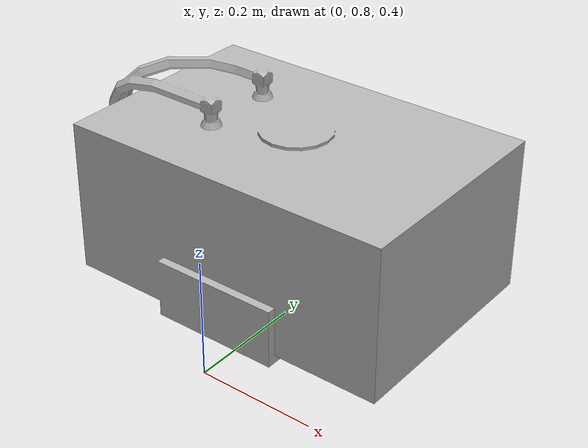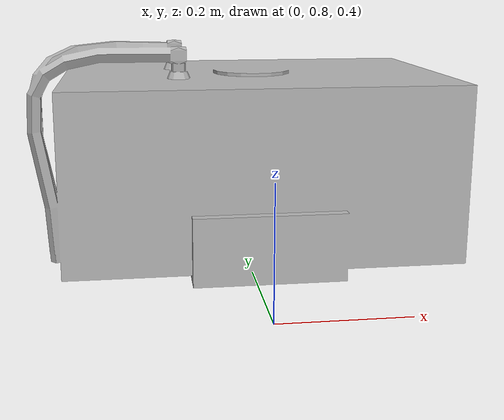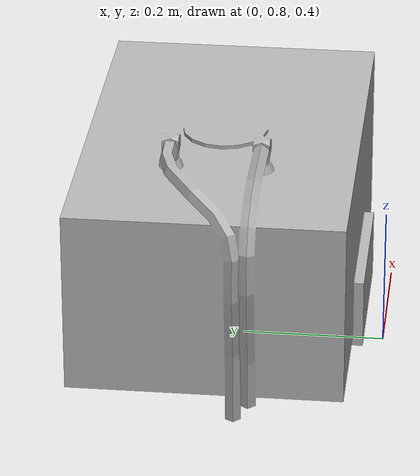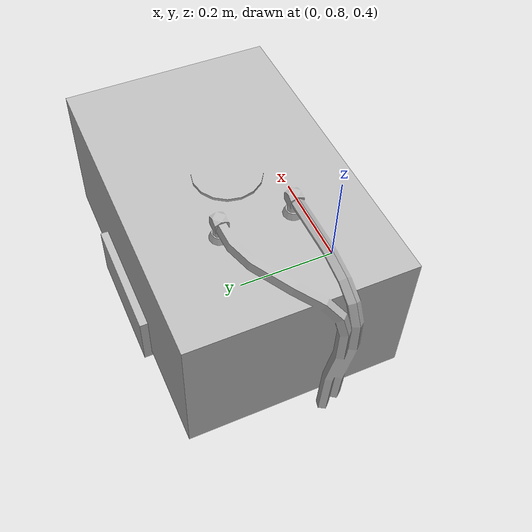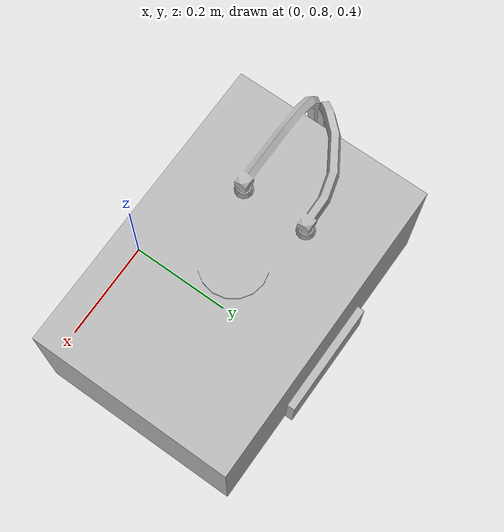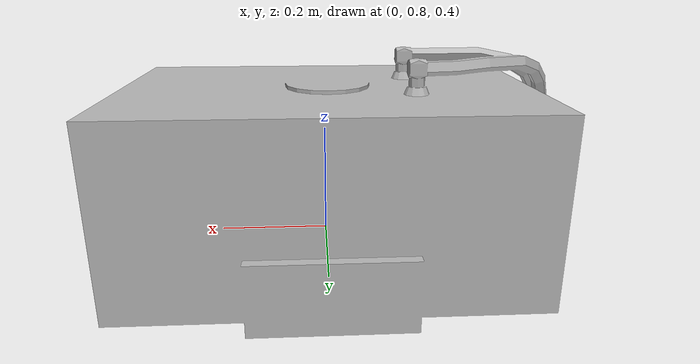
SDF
<?xml version="1.0"?>
<sdf version="1.6">
  <model name="battery">
    <link name="battery_link">

      <visual name="battery_visual">
        <geometry>
          <mesh>
            <uri>meshes/battery.dae</uri>
          </mesh>
        </geometry>
      </visual>
      <collision name="battery_collision">
        <pose>0 0 .15 0 0 0</pose>
        <geometry>
          <box><size>.6 .4 .31</size></box>
        </geometry>
      </collision>
      <inertial>
        <pose>0 0 .15 0 0 0</pose>
        <mass>23.5</mass>
        <inertia>
          <ixx>0.5015291666666667</ixx>
          <iyy>0.8931958333333333</iyy>
          <izz>1.0183333333333333</izz>
          <ixy>0</ixy>
          <ixz>0</ixz>
          <iyz>0</iyz>
        </inertia>
      </inertial>
    </link>
  </model>
</sdf>
